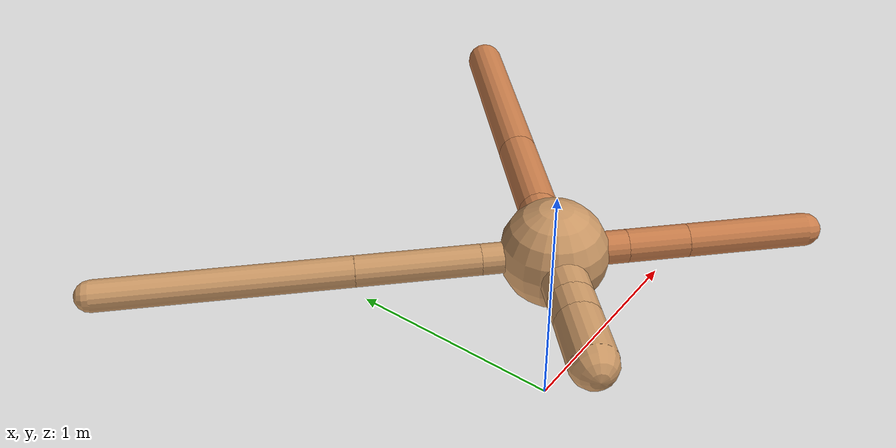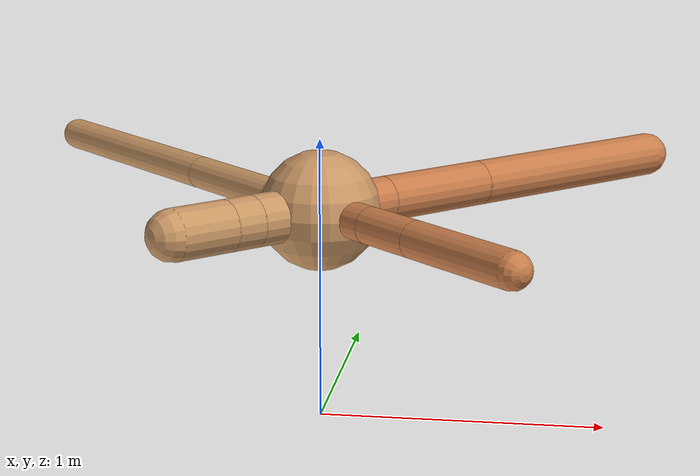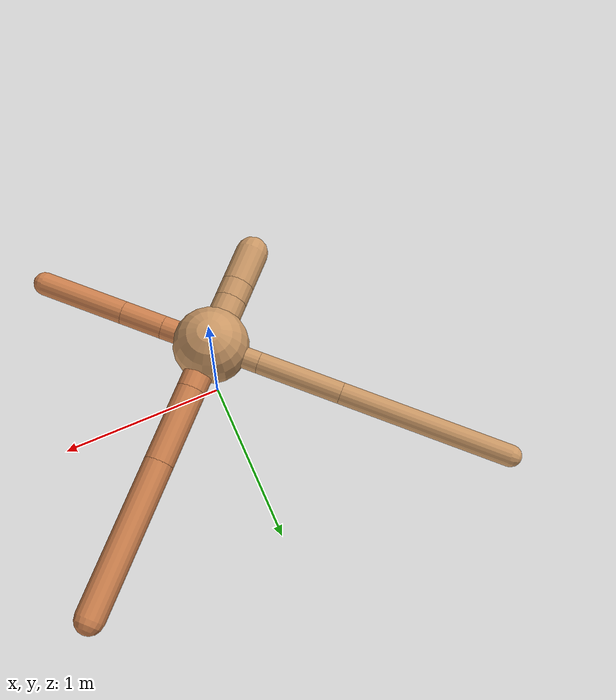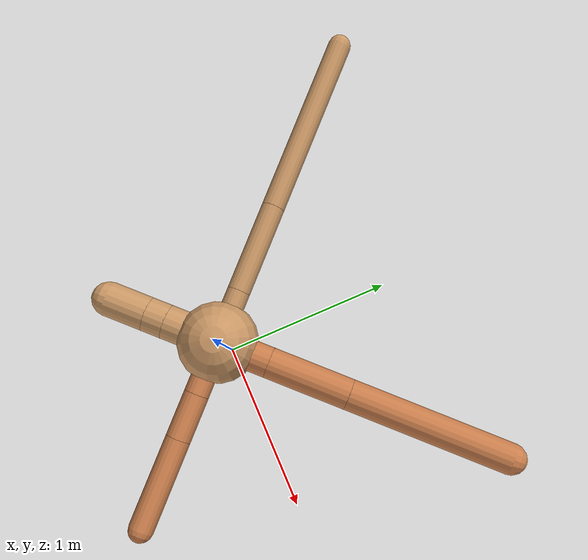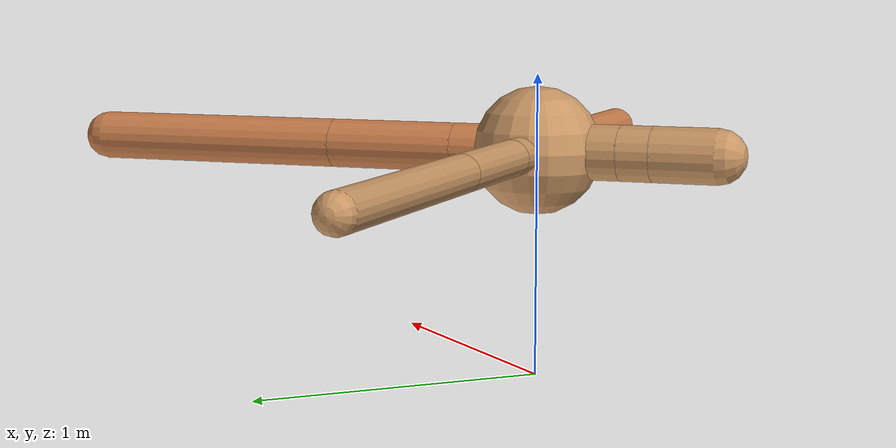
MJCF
<?xml version="1.0" ?>
<mujoco model="ant">

	<compiler angle="degree" coordinate="local" inertiafromgeom="true"/>

	<option integrator="RK4" timestep="0.01"/>

	<custom>

		<numeric data="0.0 0.0 0.55 1.0 0.0 0.0 0.0 0.0 1.0 0.0 -1.0 0.0 -1.0 0.0 1.0" name="init_qpos"/>

	</custom>

	<default>

		<joint armature="1" damping="1" limited="true"/>

		<geom conaffinity="0" condim="3" density="5.0" friction="1.5 0.1 0.1" margin="0.01" rgba="0.8 0.6 0.4 1"/>

	</default>

	<worldbody>

		<body name="torso" pos="0 0 0.75">

			<geom name="torso_geom" pos="0 0 0" size="0.2114235978570712" type="sphere"/>

			<!--joint armature="0" damping="0" limited="false" margin="0.01" name="root" pos="0 0 0" type="free"/-->

			<body name="front_left_leg" pos="0 0 0">

				<geom fromto="0 0 0 0.2 0.2 0" name="aux_1_geom" size="0.08190665455373689" type="capsule" rgba=".8 .5 .3 1"/>

				<body name="aux_1" pos="0.2 0.2 0">

					<joint axis="0 0 1" name="hip_1" pos="0.0 0.0 0.0" range="-40 40" type="hinge"/>

					<geom fromto="0 0 0 0.3080732194461227 0.3080732194461227 0" name="left_leg_geom" size="0.08190665455373689" type="capsule" rgba=".8 .5 .3 1"/>

					<body pos="0.3080732194461227 0.3080732194461227 0" name="front_left_foot">

						<joint axis="-1 1 0" name="ankle_1" pos="0.0 0.0 0.0" range="30 100" type="hinge"/>

						<geom fromto="0 0 0 0.6161464388922454 0.6161464388922454 0" name="left_ankle_geom" size="0.08190665455373689" type="capsule" rgba=".8 .5 .3 1"/>

					</body>

				</body>

			</body>

			<body name="front_right_leg" pos="0 0 0">

				<geom fromto="0 0 0 -0.2 0.2 0" name="aux_2_geom" size="0.06021332008515432" type="capsule"/>

				<body name="aux_2" pos="-0.2 0.2 0">

					<joint axis="0 0 1" name="hip_2" pos="0.0 0.0 0.0" range="-40 40" type="hinge"/>

					<geom fromto="0 0 0 -0.3361674329855784 0.3361674329855784 0" name="right_leg_geom" size="0.06021332008515432" type="capsule"/>

					<body pos="-0.3361674329855784 0.3361674329855784 0" name="front_right_foot">

						<joint axis="1 1 0" name="ankle_2" pos="0.0 0.0 0.0" range="-100 -30" type="hinge"/>

						<geom fromto="0 0 0 -0.6723348659711568 0.6723348659711568 0" name="right_ankle_geom" size="0.06021332008515432" type="capsule"/>

					</body>

				</body>

			</body>

			<body name="left_back_leg" pos="0 0 0">

				<geom fromto="0 0 0 -0.2 -0.2 0" name="aux_3_geom" size="0.0916665729927758" type="capsule"/>

				<body name="aux_3" pos="-0.2 -0.2 0">

					<joint axis="0 0 1" name="hip_3" pos="0.0 0.0 0.0" range="-40 40" type="hinge"/>

					<geom fromto="0 0 0 -0.07538855091991854 -0.07538855091991854 0" name="back_leg_geom" size="0.0916665729927758" type="capsule"/>

					<body pos="-0.07538855091991854 -0.07538855091991854 0" name="left_back_foot">

						<joint axis="-1 1 0" name="ankle_3" pos="0.0 0.0 0.0" range="-100 -30" type="hinge"/>

						<geom fromto="0 0 0 -0.15077710183983709 -0.15077710183983709 0" name="third_ankle_geom" size="0.0916665729927758" type="capsule"/>

					</body>

				</body>

			</body>

			<body name="right_back_leg" pos="0 0 0">

				<geom fromto="0 0 0 0.2 -0.2 0" name="aux_4_geom" size="0.0650216968730107" type="capsule" rgba=".8 .5 .3 1"/>

				<body name="aux_4" pos="0.2 -0.2 0">

					<joint axis="0 0 1" name="hip_4" pos="0.0 0.0 0.0" range="-40 40" type="hinge"/>

					<geom fromto="0 0 0 0.16952028437314945 -0.16952028437314945 0" name="rightback_leg_geom" size="0.0650216968730107" type="capsule" rgba=".8 .5 .3 1"/>

					<body pos="0.16952028437314945 -0.16952028437314945 0" name="right_back_foot">

						<joint axis="1 1 0" name="ankle_4" pos="0.0 0.0 0.0" range="30 100" type="hinge"/>

						<geom fromto="0 0 0 0.3390405687462989 -0.3390405687462989 0" name="fourth_ankle_geom" size="0.0650216968730107" type="capsule" rgba=".8 .5 .3 1"/>

					</body>

				</body>

			</body>

		</body>

	</worldbody>

	<actuator>

		<motor ctrllimited="true" ctrlrange="-1.0 1.0" joint="hip_4" gear="150"/>

		<motor ctrllimited="true" ctrlrange="-1.0 1.0" joint="ankle_4" gear="150"/>

		<motor ctrllimited="true" ctrlrange="-1.0 1.0" joint="hip_1" gear="150"/>

		<motor ctrllimited="true" ctrlrange="-1.0 1.0" joint="ankle_1" gear="150"/>

		<motor ctrllimited="true" ctrlrange="-1.0 1.0" joint="hip_2" gear="150"/>

		<motor ctrllimited="true" ctrlrange="-1.0 1.0" joint="ankle_2" gear="150"/>

		<motor ctrllimited="true" ctrlrange="-1.0 1.0" joint="hip_3" gear="150"/>

		<motor ctrllimited="true" ctrlrange="-1.0 1.0" joint="ankle_3" gear="150"/>

	</actuator>

</mujoco>
